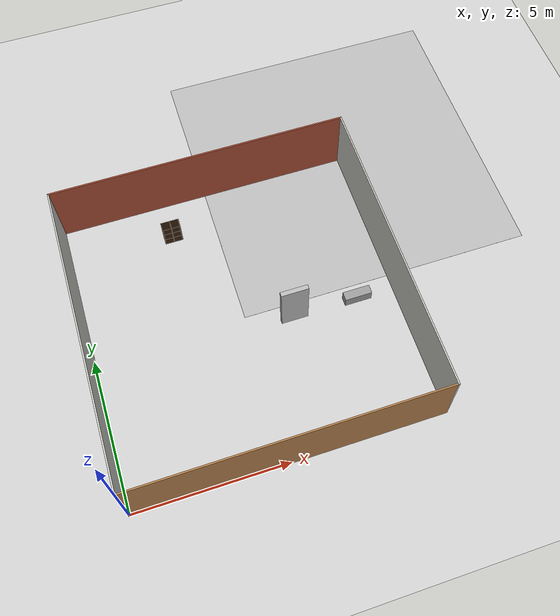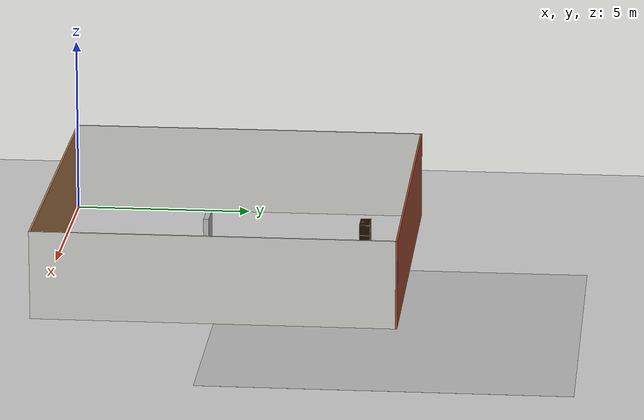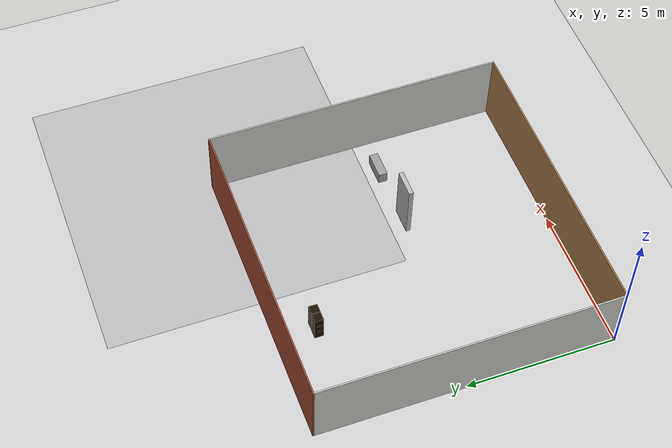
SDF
<sdf version="1.6">
 <world name="default">
  <model name="ground_plane">
   <static>1</static>
   <link name="link">
    <collision name="collision">
     <geometry><plane><normal>0 0 1</normal><size>100 100</size></plane></geometry>
     <surface><friction><ode><mu>100</mu><mu2>50</mu2></ode></friction></surface>
    </collision>
    <visual name="visual">
     <cast_shadows>0</cast_shadows>
     <geometry><plane><normal>0 0 1</normal><size>100 100</size></plane></geometry>
     <material>
      <script><uri>file://media/materials/scripts/gazebo.material</uri><name>Gazebo/Grey</name></script>
     </material>
    </visual>
   </link>
  </model>
  <model name="10x10_4_colour_walls">
   <pose>5 5 0 0 -0 0</pose>
   <link name="Wall_2">
    <collision name="Wall_2_Collision">
     <geometry><box><size>10.05 0.05 2.5</size></box></geometry>
     <pose>0 0 1.25 0 -0 0</pose>
    </collision>
    <visual name="Wall_2_Visual">
     <pose>0 0 1.25 0 -0 0</pose>
     <geometry><box><size>10.05 0.05 2.5</size></box></geometry>
     <material>
      <script><uri>file://media/materials/scripts/gazebo.material</uri><name>Gazebo/CeilingTiled</name></script>
      <ambient>1 1 1 1</ambient>
     </material>
    </visual>
    <pose>-5 0 0 0 0 -1.5708</pose>
   </link>
   <link name="Wall_3">
    <collision name="Wall_3_Collision">
     <geometry><box><size>10.05 0.05 2.5</size></box></geometry>
     <pose>0 0 1.25 0 -0 0</pose>
    </collision>
    <visual name="Wall_3_Visual">
     <pose>0 0 1.25 0 -0 0</pose>
     <geometry><box><size>10.05 0.05 2.5</size></box></geometry>
     <material>
      <script><uri>file://media/materials/scripts/gazebo.material</uri><name>Gazebo/Wood</name></script>
      <ambient>1 1 1 1</ambient>
     </material>
    </visual>
    <pose>0 -5 0 0 -0 0</pose>
   </link>
   <link name="Wall_4">
    <collision name="Wall_4_Collision">
     <geometry><box><size>10.05 0.05 2.5</size></box></geometry>
     <pose>0 0 1.25 0 -0 0</pose>
    </collision>
    <visual name="Wall_4_Visual">
     <pose>0 0 1.25 0 -0 0</pose>
     <geometry><box><size>10.05 0.05 2.5</size></box></geometry>
     <material>
      <script><uri>file://media/materials/scripts/gazebo.material</uri><name>Gazebo/CeilingTiled</name></script>
      <ambient>0.435294 0.796078 0.67451 1</ambient>
     </material>
    </visual>
    <pose>5 0 0 0 -0 1.5708</pose>
   </link>
   <link name="Wall_5">
    <collision name="Wall_5_Collision">
     <geometry><box><size>10.05 0.05 2.5</size></box></geometry>
     <pose>0 0 1.25 0 -0 0</pose>
    </collision>
    <visual name="Wall_5_Visual">
     <pose>0 0 1.25 0 -0 0</pose>
     <geometry><box><size>10.05 0.05 2.5</size></box></geometry>
     <material>
      <script><uri>file://media/materials/scripts/gazebo.material</uri><name>Gazebo/Bricks</name></script>
      <ambient>1 1 1 1</ambient>
     </material>
    </visual>
    <pose>0 5 0 0 -0 3.14159</pose>
   </link>
   <static>1</static>
  </model>
  <model name="Floor_room3">
   <link name="main">
    <pose>0 0 0.01 0 -0 0</pose>
    <collision name="main_Collision">
     <geometry><box><size>10 10 0.001</size></box></geometry>
     <surface><friction><ode><mu>100</mu><mu2>100</mu2></ode></friction></surface>
    </collision>
    <visual name="main_Visual">
     <geometry><box><size>10 10 0.001</size></box></geometry>
     <material>
      <script>
       <uri>file:///home/linhai/.gazebo/models/Floor_room3/materials/scripts</uri>
       <uri>file:///home/linhai/.gazebo/models/Floor_room3/materials/textures</uri>
       <name>floor_room3</name>
      </script>
     </material>
    </visual>
   </link>
   <static>1</static>
   <pose>9.99645 10.0074 -0.01 0 -0 0</pose>
  </model>
  <model name="6_Cube_StorageE">
   <link name="Wall_0">
    <pose>0 0 0.01 0 -0 0</pose>
    <inertial>
     <mass>1.6201</mass>
     <inertia><ixx>0.0119</ixx><iyy>0.0631</iyy><izz>0.0513</izz><ixy>0</ixy><ixz>0</ixz><iyz>0</iyz></inertia>
    </inertial>
    <collision name="Wall_0_Collision"><geometry><box><size>0.616 0.296 0.02</size></box></geometry></collision>
    <visual name="Wall_0_Visual">
     <geometry><box><size>0.616 0.296 0.02</size></box></geometry>
     <material>
      <script><uri>file://media/materials/scripts/gazebo.material</uri><name>Gazebo/Grey</name></script>
      <ambient>0.105882 0.0509804 0 1</ambient>
     </material>
    </visual>
   </link>
   <joint name="0_2" type="fixed">
    <pose>-0.308 0 0 0 -0 0</pose>
    <parent>Wall_2</parent>
    <child>Wall_0</child>
    <axis>
     <xyz>1 0 0</xyz>
     <use_parent_model_frame>0</use_parent_model_frame>
     <limit><lower>-1e+16</lower><upper>1e+16</upper></limit>
    </axis>
   </joint>
   <joint name="0_12" type="fixed">
    <parent>Wall_12</parent>
    <child>Wall_0</child>
    <axis>
     <xyz>0 0 1</xyz>
     <use_parent_model_frame>0</use_parent_model_frame>
     <limit><lower>-1e+16</lower><upper>1e+16</upper></limit>
    </axis>
   </joint>
   <joint name="0_4" type="fixed">
    <pose>0.308 0 0 0 -0 0</pose>
    <parent>Wall_4</parent>
    <child>Wall_0</child>
    <axis>
     <xyz>1 0 0</xyz>
     <use_parent_model_frame>0</use_parent_model_frame>
     <limit><lower>-1e+16</lower><upper>1e+16</upper></limit>
    </axis>
   </joint>
   <link name="Wall_10">
    <pose>0 0 0.61 0 -0 0</pose>
    <inertial>
     <mass>1.6201</mass>
     <inertia><ixx>0.0119</ixx><iyy>0.0631</iyy><izz>0.0513</izz><ixy>0</ixy><ixz>0</ixz><iyz>0</iyz></inertia>
    </inertial>
    <collision name="Wall_10_Collision"><geometry><box><size>0.616 0.296 0.02</size></box></geometry></collision>
    <visual name="Wall_10_Visual">
     <geometry><box><size>0.616 0.296 0.02</size></box></geometry>
     <material>
      <script><uri>file://media/materials/scripts/gazebo.material</uri><name>Gazebo/Grey</name></script>
      <ambient>0.105882 0.0509804 0 1</ambient>
     </material>
    </visual>
   </link>
   <joint name="10_2" type="fixed">
    <pose>-0.308 0 0 0 -0 0</pose>
    <parent>Wall_2</parent>
    <child>Wall_10</child>
    <axis>
     <xyz>1 0 0</xyz>
     <use_parent_model_frame>0</use_parent_model_frame>
     <limit><lower>-1e+16</lower><upper>1e+16</upper></limit>
    </axis>
   </joint>
   <joint name="10_12" type="fixed">
    <parent>Wall_12</parent>
    <child>Wall_10</child>
    <axis>
     <xyz>0 0 1</xyz>
     <use_parent_model_frame>0</use_parent_model_frame>
     <limit><lower>-1e+16</lower><upper>1e+16</upper></limit>
    </axis>
   </joint>
   <joint name="10_4" type="fixed">
    <pose>0.308 0 0 0 -0 0</pose>
    <parent>Wall_4</parent>
    <child>Wall_10</child>
    <axis>
     <xyz>1 0 0</xyz>
     <use_parent_model_frame>0</use_parent_model_frame>
     <limit><lower>-1e+16</lower><upper>1e+16</upper></limit>
    </axis>
   </joint>
   <link name="Wall_12">
    <pose>0 0 0.4575 0 -0 0</pose>
    <inertial>
     <mass>2.4065</mass>
     <inertia><ixx>0.0177</ixx><iyy>0.1855</iyy><izz>0.168</izz><ixy>0</ixy><ixz>0</ixz><iyz>0</iyz></inertia>
    </inertial>
    <collision name="Wall_12_Collision"><geometry><box><size>0.02 0.296 0.915</size></box></geometry></collision>
    <visual name="Wall_12_Visual">
     <geometry><box><size>0.02 0.296 0.915</size></box></geometry>
     <material>
      <script><uri>file://media/materials/scripts/gazebo.material</uri><name>Gazebo/Grey</name></script>
      <ambient>0.105882 0.0509804 0 1</ambient>
     </material>
    </visual>
   </link>
   <link name="Wall_2">
    <pose>-0.298 0 0.4575 0 -0 0</pose>
    <inertial>
     <mass>2.4065</mass>
     <inertia><ixx>0.0177</ixx><iyy>0.1855</iyy><izz>0.168</izz><ixy>0</ixy><ixz>0</ixz><iyz>0</iyz></inertia>
    </inertial>
    <collision name="Wall_2_Collision"><geometry><box><size>0.02 0.296 0.915</size></box></geometry></collision>
    <visual name="Wall_2_Visual">
     <geometry><box><size>0.02 0.296 0.915</size></box></geometry>
     <material>
      <script><uri>file://media/materials/scripts/gazebo.material</uri><name>Gazebo/Grey</name></script>
      <ambient>0.105882 0.0509804 0 1</ambient>
     </material>
    </visual>
   </link>
   <link name="Wall_4">
    <pose>0.298 0 0.4575 0 -0 0</pose>
    <inertial>
     <mass>2.4065</mass>
     <inertia><ixx>0.0177</ixx><iyy>0.1855</iyy><izz>0.168</izz><ixy>0</ixy><ixz>0</ixz><iyz>0</iyz></inertia>
    </inertial>
    <collision name="Wall_4_Collision"><geometry><box><size>0.02 0.296 0.915</size></box></geometry></collision>
    <visual name="Wall_4_Visual">
     <geometry><box><size>0.02 0.296 0.915</size></box></geometry>
     <material>
      <script><uri>file://media/materials/scripts/gazebo.material</uri><name>Gazebo/Grey</name></script>
      <ambient>0.105882 0.0509804 0 1</ambient>
     </material>
    </visual>
   </link>
   <link name="Wall_6">
    <pose>0 0 0.905 0 -0 0</pose>
    <inertial>
     <mass>1.6201</mass>
     <inertia><ixx>0.0119</ixx><iyy>0.0631</iyy><izz>0.0513</izz><ixy>0</ixy><ixz>0</ixz><iyz>0</iyz></inertia>
    </inertial>
    <collision name="Wall_6_Collision"><geometry><box><size>0.616 0.296 0.02</size></box></geometry></collision>
    <visual name="Wall_6_Visual">
     <geometry><box><size>0.616 0.296 0.02</size></box></geometry>
     <material>
      <script><uri>file://media/materials/scripts/gazebo.material</uri><name>Gazebo/Grey</name></script>
      <ambient>0.105882 0.0509804 0 1</ambient>
     </material>
    </visual>
   </link>
   <joint name="6_2" type="fixed">
    <pose>-0.308 0 0 0 -0 0</pose>
    <parent>Wall_2</parent>
    <child>Wall_6</child>
    <axis>
     <xyz>2 0 0</xyz>
     <use_parent_model_frame>0</use_parent_model_frame>
     <limit><lower>-1e+16</lower><upper>1e+16</upper></limit>
    </axis>
   </joint>
   <joint name="6_12" type="fixed">
    <parent>Wall_12</parent>
    <child>Wall_6</child>
    <axis>
     <xyz>0 0 1</xyz>
     <use_parent_model_frame>0</use_parent_model_frame>
     <limit><lower>-1e+16</lower><upper>1e+16</upper></limit>
    </axis>
   </joint>
   <joint name="6_4" type="fixed">
    <pose>0.308 0 0 0 -0 0</pose>
    <parent>Wall_4</parent>
    <child>Wall_6</child>
    <axis>
     <xyz>1 0 0</xyz>
     <use_parent_model_frame>0</use_parent_model_frame>
     <limit><lower>-1e+16</lower><upper>1e+16</upper></limit>
    </axis>
   </joint>
   <link name="Wall_8">
    <pose>0 0 0.305 0 -0 0</pose>
    <inertial>
     <mass>1.6201</mass>
     <inertia><ixx>0.0119</ixx><iyy>0.0631</iyy><izz>0.0513</izz><ixy>0</ixy><ixz>0</ixz><iyz>0</iyz></inertia>
    </inertial>
    <collision name="Wall_8_Collision"><geometry><box><size>0.616 0.296 0.02</size></box></geometry></collision>
    <visual name="Wall_8_Visual">
     <geometry><box><size>0.616 0.296 0.02</size></box></geometry>
     <material>
      <script><uri>file://media/materials/scripts/gazebo.material</uri><name>Gazebo/Grey</name></script>
      <ambient>0.105882 0.0509804 0 1</ambient>
     </material>
    </visual>
   </link>
   <joint name="8_2" type="fixed">
    <pose>-0.308 0 0 0 -0 0</pose>
    <parent>Wall_2</parent>
    <child>Wall_8</child>
    <axis>
     <xyz>1 0 0</xyz>
     <use_parent_model_frame>0</use_parent_model_frame>
     <limit><lower>-1e+16</lower><upper>1e+16</upper></limit>
    </axis>
   </joint>
   <joint name="8_12" type="fixed">
    <parent>Wall_12</parent>
    <child>Wall_8</child>
    <axis>
     <xyz>0 0 1</xyz>
     <use_parent_model_frame>0</use_parent_model_frame>
     <limit><lower>-1e+16</lower><upper>1e+16</upper></limit>
    </axis>
   </joint>
   <joint name="8_4" type="fixed">
    <pose>0.308 0 0 0 -0 0</pose>
    <parent>Wall_4</parent>
    <child>Wall_8</child>
    <axis>
     <xyz>1 0 0</xyz>
     <use_parent_model_frame>0</use_parent_model_frame>
     <limit><lower>-1e+16</lower><upper>1e+16</upper></limit>
    </axis>
   </joint>
   <static>1</static>
   <pose>3.51324 8.65246 0 0 -0 0</pose>
  </model>
  <model name="Box_36x15W">
   <link name="Wall">
    <pose>0 0 0.1985 0 -0 0</pose>
    <inertial>
     <mass>5</mass>
     <inertia><ixx>0.1022</ixx><iyy>0.4107</iyy><izz>0.3815</izz><ixy>0</ixy><ixz>0</ixz><iyz>0</iyz></inertia>
    </inertial>
    <collision name="Wall_Collision"><geometry><box><size>0.91 0.296 0.397</size></box></geometry></collision>
    <visual name="Wall_Visual">
     <geometry><box><size>0.91 0.296 0.397</size></box></geometry>
     <material>
      <script><uri>file://media/materials/scripts/gazebo.material</uri><name>Gazebo/Grey</name></script>
      <ambient>1 1 1 1</ambient>
     </material>
    </visual>
   </link>
   <static>1</static>
   <pose>8.72968 4.54072 0 0 -0 0</pose>
  </model>
  <model name="door">
   <link name="link_0">
    <visual name="visual">
     <pose>0 0 1 0 -0 0</pose>
     <geometry><box><size>0.9 0.15 2</size></box></geometry>
     <material>
      <script>
       <uri>model://door/materials/scripts</uri>
       <uri>model://door/materials/textures</uri>
       <name>door</name>
      </script>
     </material>
    </visual>
    <collision name="collision">
     <pose>0 0 1 0 -0 0</pose>
     <geometry><box><size>0.9 0.15 2</size></box></geometry>
    </collision>
   </link>
   <static>1</static>
   <pose>6.54072 4.49727 0 0 -0 0</pose>
  </model>
 </world>
</sdf>
